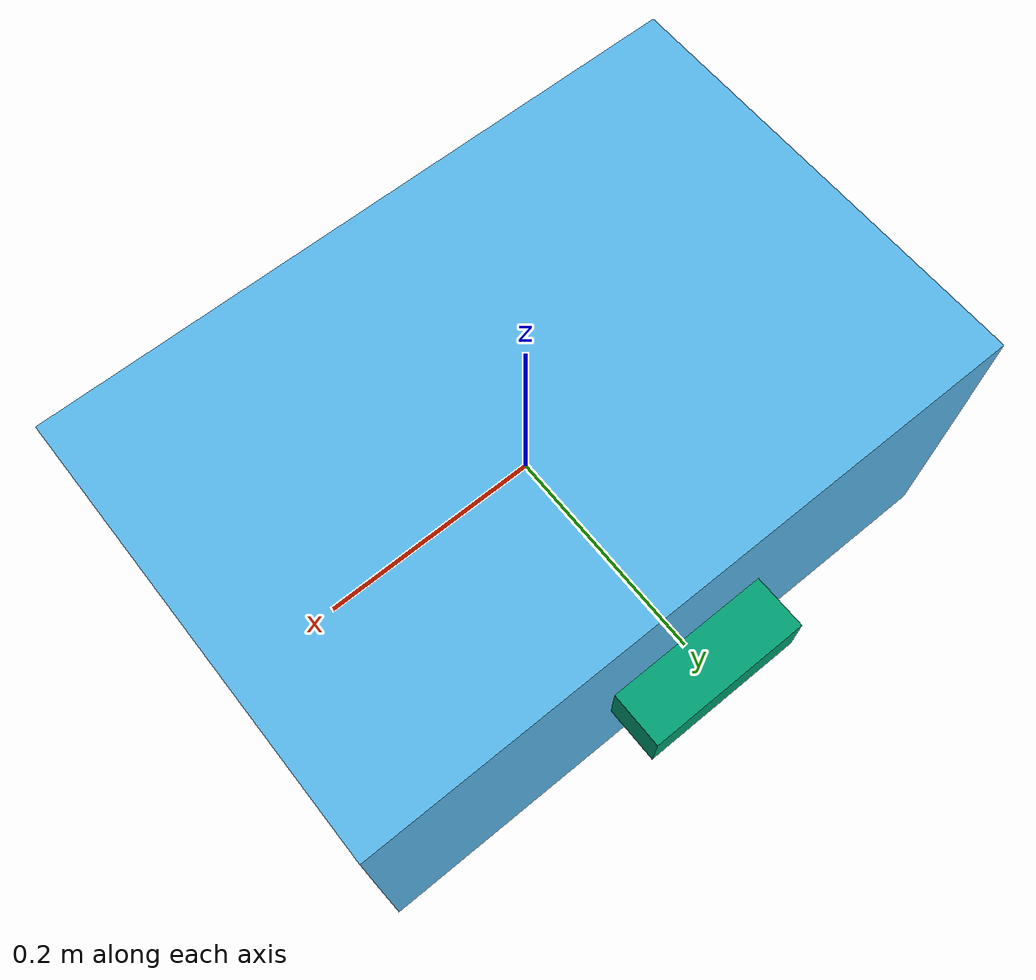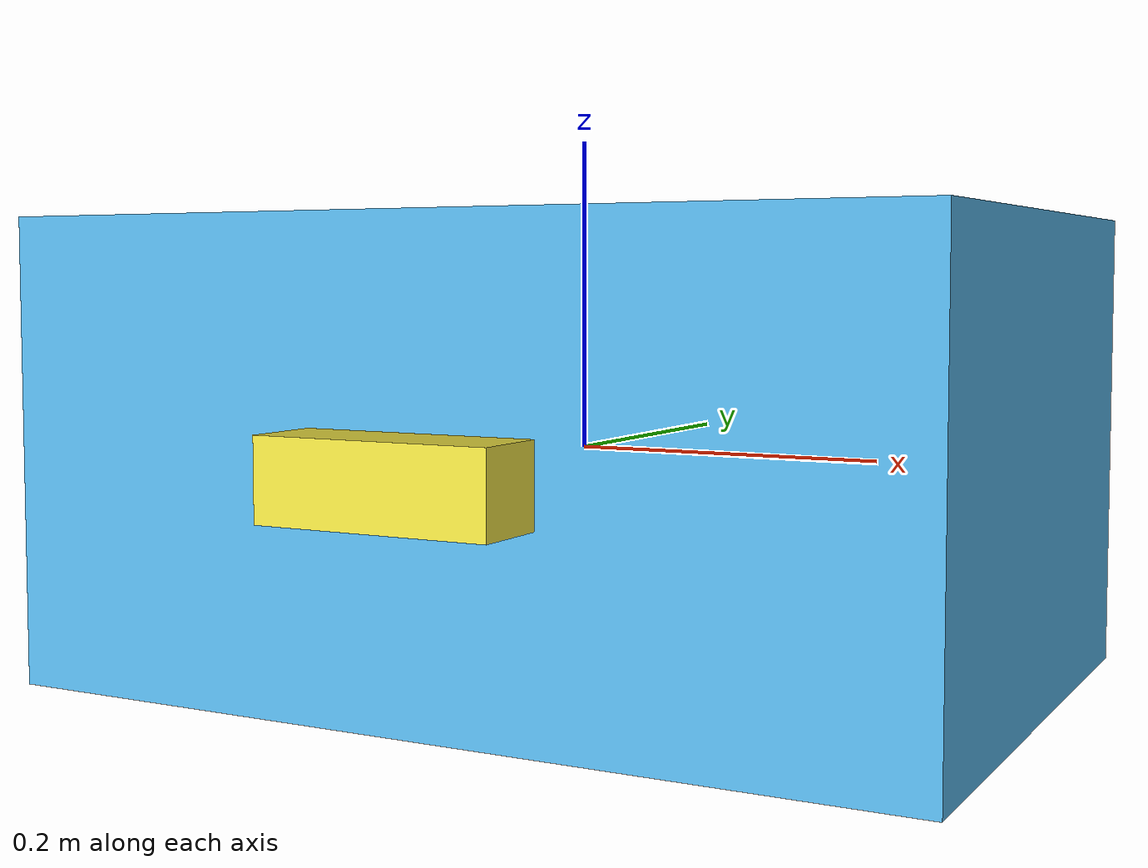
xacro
<?xml version="1.0"?>
<robot name="sub" xmlns:xacro="http://www.ros.org/wiki/xacro">

<xacro:property name="body_width" value="0.4" />
<xacro:property name="body_length" value="0.6" />
<xacro:property name="body_height" value="0.3" />

<xacro:property name="thruster_width" value="0.05" />
<xacro:property name="thruster_length" value="0.15" />
<xacro:property name="thruster_height" value="0.05" />

<gazebo reference="base_link">
    <gravity>0</gravity>
    <turnGravityOff>true</turnGravityOff>
</gazebo>

<link name="world"/>
<joint name="float_joint" type="floating">
    <parent link="world"/>
    <origin rpy="0 0 0" xyz="0 0 0"/>
    <child link="base_link"/>
</joint>

<link name="base_link">
    <visual>
        <origin xyz="0 0 0" rpy="0 0 0"/>
        <geometry>
            <box size="${body_length} ${body_width} ${body_height}"/>
        </geometry>
    </visual>
    <collision>
        <origin xyz="0 0 0" rpy="0 0 0"/>
        <geometry>
            <box size="${body_length} ${body_width} ${body_height}"/>
        </geometry>
    </collision>
   <inertial>
     <origin xyz="0 0 0" rpy="0 0 0"/>
     <mass value="1"/>
     <inertia ixx="10"  ixy="0"  ixz="0" iyy="10" iyz="0" izz="10" />
     <gravity>0</gravity>
   </inertial>

   <gravity>0</gravity>
</link>

<xacro:macro name="thruster_macro" params="suffix *offset">
    <gazebo reference="thruster_${suffix}">
        <gravity>0</gravity>
        <turnGravityOff>true</turnGravityOff>
    </gazebo>
    <joint name="thruster_${suffix}_joint" type="prismatic">
        <parent link="base_link"/>
        <xacro:insert_block name="offset"/>
        <child link="thruster_${suffix}"/>
        <limit effort="0" velocity="0" lower="-0.01" upper="0.01" />
    </joint>
    <link name="thruster_${suffix}">
        <visual>
            <origin xyz="0 0 0" rpy="0 0 0"/>
            <geometry>
                <box size="${thruster_length} ${thruster_width} ${thruster_height}"/>
            </geometry>
        </visual>
        <collision>
            <origin xyz="0 0 0" rpy="0 0 0"/>
            <geometry>
                <box size="${thruster_length} ${thruster_width} ${thruster_height}"/>
            </geometry>
        </collision>
        <inertial>
            <origin xyz="0 0 0" rpy="0 0 0"/>
            <mass value="0.1"/>
            <inertia ixx="1"  ixy="0"  ixz="0" iyy="1" iyz="0" izz="1" />
            <gravity>0</gravity>
        </inertial>
        <gravity>0</gravity>
    </link>
</xacro:macro>

<xacro:thruster_macro suffix="1">
    <origin xyz="0 ${(body_width + thruster_width) / 2} 0" rpy="0 0 0"/>
</xacro:thruster_macro>

<xacro:thruster_macro suffix="2">
    <origin xyz="0 ${-(body_width + thruster_width) / 2} 0" rpy="0 0 0"/>
</xacro:thruster_macro>

</robot>
